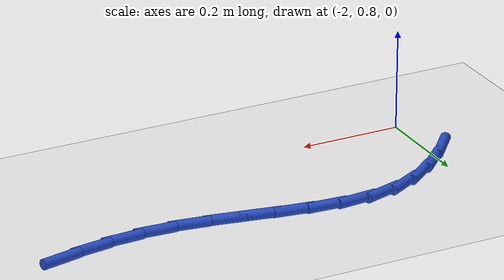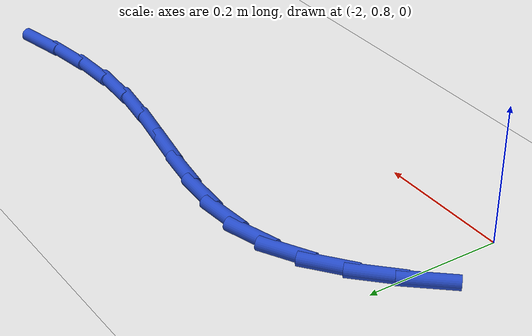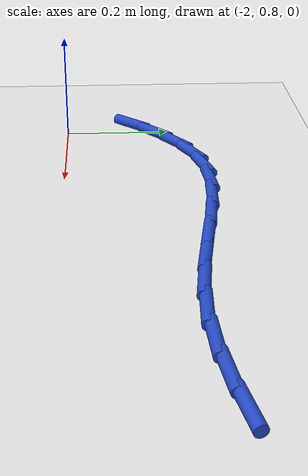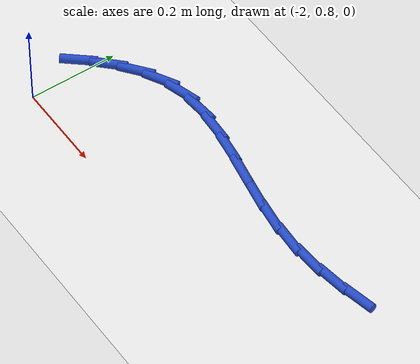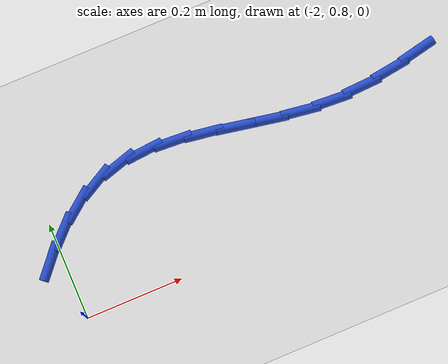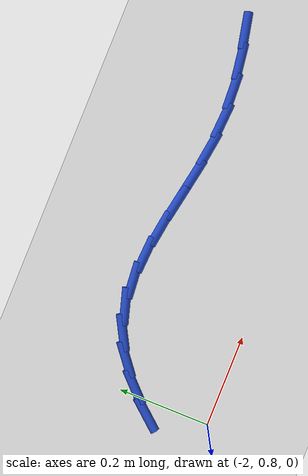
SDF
<sdf version="1.6">
 <world name="default">
  <model name="ground_plane">
   <static>1</static>
   <link name="link">
    <collision name="collision">
     <geometry><plane><normal>0 0 1</normal><size>100 100</size></plane></geometry>
     <surface><friction><ode><mu>100</mu><mu2>50</mu2></ode></friction></surface>
    </collision>
    <visual name="visual">
     <cast_shadows>0</cast_shadows>
     <geometry><plane><normal>0 0 1</normal><size>100 100</size></plane></geometry>
     <material>
      <script><uri>file://media/materials/scripts/gazebo.material</uri><name>Gazebo/WhiteGlow</name></script>
     </material>
    </visual>
   </link>
  </model>
  <model name="line">
   <link name="link_30">
    <pose>-1.1941147302797734 1.037607328694824 0.01 0 1.57 0.20791620965055152</pose>
    <collision name="collision">
     <geometry><cylinder><radius>0.01</radius><length>0.08</length></cylinder></geometry>
    </collision>
    <visual name="visual">
     <material>
      <script><name>Gazebo/Blue</name><uri>file://media/materials/scripts/gazebo.material</uri></script>
     </material>
     <geometry><cylinder><radius>0.01</radius><length>0.08</length></cylinder></geometry>
    </visual>
   </link>
   <link name="link_31">
    <pose>-1.2584746139428011 1.0240296489253082 0.01 0 1.57 0.1388541272055318</pose>
    <collision name="collision">
     <geometry><cylinder><radius>0.01</radius><length>0.08</length></cylinder></geometry>
    </collision>
    <visual name="visual">
     <material>
      <script><name>Gazebo/Blue</name><uri>file://media/materials/scripts/gazebo.material</uri></script>
     </material>
     <geometry><cylinder><radius>0.01</radius><length>0.08</length></cylinder></geometry>
    </visual>
   </link>
   <link name="link_32">
    <pose>-1.3234480516079474 1.0149493865605137 0.01 0 1.57 0.04717300464229935</pose>
    <collision name="collision">
     <geometry><cylinder><radius>0.01</radius><length>0.08</length></cylinder></geometry>
    </collision>
    <visual name="visual">
     <material>
      <script><name>Gazebo/Blue</name><uri>file://media/materials/scripts/gazebo.material</uri></script>
     </material>
     <geometry><cylinder><radius>0.01</radius><length>0.08</length></cylinder></geometry>
    </visual>
   </link>
   <link name="link_33">
    <pose>-1.388926744562097 1.0118582666517422 0.01 0 1.57 -0.06031483211173553</pose>
    <collision name="collision">
     <geometry><cylinder><radius>0.01</radius><length>0.08</length></cylinder></geometry>
    </collision>
    <visual name="visual">
     <material>
      <script><name>Gazebo/Blue</name><uri>file://media/materials/scripts/gazebo.material</uri></script>
     </material>
     <geometry><cylinder><radius>0.01</radius><length>0.08</length></cylinder></geometry>
    </visual>
   </link>
   <link name="link_34">
    <pose>-1.4547596397279179 1.0158337886633184 0.01 0 1.57 -0.141830305003376</pose>
    <collision name="collision">
     <geometry><cylinder><radius>0.01</radius><length>0.08</length></cylinder></geometry>
    </collision>
    <visual name="visual">
     <material>
      <script><name>Gazebo/Blue</name><uri>file://media/materials/scripts/gazebo.material</uri></script>
     </material>
     <geometry><cylinder><radius>0.01</radius><length>0.08</length></cylinder></geometry>
    </visual>
   </link>
   <link name="link_35">
    <pose>-1.5205138358712897 1.0252227666588032 0.01 0 1.57 -0.1828571699990268</pose>
    <collision name="collision">
     <geometry><cylinder><radius>0.01</radius><length>0.08</length></cylinder></geometry>
    </collision>
    <visual name="visual">
     <material>
      <script><name>Gazebo/Blue</name><uri>file://media/materials/scripts/gazebo.material</uri></script>
     </material>
     <geometry><cylinder><radius>0.01</radius><length>0.08</length></cylinder></geometry>
    </visual>
   </link>
   <link name="link_36">
    <pose>-1.5856423272134117 1.0372665130094307 0.01 0 1.57 -0.18451784505049837</pose>
    <collision name="collision">
     <geometry><cylinder><radius>0.01</radius><length>0.08</length></cylinder></geometry>
    </collision>
    <visual name="visual">
     <material>
      <script><name>Gazebo/Blue</name><uri>file://media/materials/scripts/gazebo.material</uri></script>
     </material>
     <geometry><cylinder><radius>0.01</radius><length>0.08</length></cylinder></geometry>
    </visual>
   </link>
   <link name="link_37">
    <pose>-1.6495977852912187 1.0492032137604403 0.01 0 1.57 -0.1446848916508525</pose>
    <collision name="collision">
     <geometry><cylinder><radius>0.01</radius><length>0.08</length></cylinder></geometry>
    </collision>
    <visual name="visual">
     <material>
      <script><name>Gazebo/Blue</name><uri>file://media/materials/scripts/gazebo.material</uri></script>
     </material>
     <geometry><cylinder><radius>0.01</radius><length>0.08</length></cylinder></geometry>
    </visual>
   </link>
   <link name="link_38">
    <pose>-1.7118328816416417 1.0582710549570715 0.01 0 1.57 -0.05725462051528842</pose>
    <collision name="collision">
     <geometry><cylinder><radius>0.01</radius><length>0.08</length></cylinder></geometry>
    </collision>
    <visual name="visual">
     <material>
      <script><name>Gazebo/Blue</name><uri>file://media/materials/scripts/gazebo.material</uri></script>
     </material>
     <geometry><cylinder><radius>0.01</radius><length>0.08</length></cylinder></geometry>
    </visual>
   </link>
   <link name="link_39">
    <pose>-1.7718002878016155 1.0617082226445642 0.01 0 1.57 0.08648734483342908</pose>
    <collision name="collision">
     <geometry><cylinder><radius>0.01</radius><length>0.08</length></cylinder></geometry>
    </collision>
    <visual name="visual">
     <material>
      <script><name>Gazebo/Blue</name><uri>file://media/materials/scripts/gazebo.material</uri></script>
     </material>
     <geometry><cylinder><radius>0.01</radius><length>0.08</length></cylinder></geometry>
    </visual>
   </link>
   <link name="link_40">
    <pose>-1.828952675308072 1.056752902868158 0.01 0 1.57 0.289834148782788</pose>
    <collision name="collision">
     <geometry><cylinder><radius>0.01</radius><length>0.08</length></cylinder></geometry>
    </collision>
    <visual name="visual">
     <material>
      <script><name>Gazebo/Blue</name><uri>file://media/materials/scripts/gazebo.material</uri></script>
     </material>
     <geometry><cylinder><radius>0.01</radius><length>0.08</length></cylinder></geometry>
    </visual>
   </link>
   <link name="link_41">
    <pose>-1.882756156443358 1.0407069736554835 0.01 0 1.57 0.5031441622217817</pose>
    <collision name="collision">
     <geometry><cylinder><radius>0.01</radius><length>0.08</length></cylinder></geometry>
    </collision>
    <visual name="visual">
     <material>
      <script><name>Gazebo/Blue</name><uri>file://media/materials/scripts/gazebo.material</uri></script>
     </material>
     <geometry><cylinder><radius>0.01</radius><length>0.08</length></cylinder></geometry>
    </visual>
   </link>
   <link name="link_42">
    <pose>-1.933122799134219 1.0129855737334788 0.01 0 1.57 0.6686027158647435</pose>
    <collision name="collision">
     <geometry><cylinder><radius>0.01</radius><length>0.08</length></cylinder></geometry>
    </collision>
    <visual name="visual">
     <material>
      <script><name>Gazebo/Blue</name><uri>file://media/materials/scripts/gazebo.material</uri></script>
     </material>
     <geometry><cylinder><radius>0.01</radius><length>0.08</length></cylinder></geometry>
    </visual>
   </link>
   <link name="link_43">
    <pose>-1.980503220160912 0.9755558761873655 0.01 0 1.57 0.7869712430743203</pose>
    <collision name="collision">
     <geometry><cylinder><radius>0.01</radius><length>0.08</length></cylinder></geometry>
    </collision>
    <visual name="visual">
     <material>
      <script><name>Gazebo/Blue</name><uri>file://media/materials/scripts/gazebo.material</uri></script>
     </material>
     <geometry><cylinder><radius>0.01</radius><length>0.08</length></cylinder></geometry>
    </visual>
   </link>
   <link name="link_44">
    <pose>-2.0253802025544703 0.9305374810857793 0.01 0 1.57 0.8669700604327482</pose>
    <collision name="collision">
     <geometry><cylinder><radius>0.01</radius><length>0.08</length></cylinder></geometry>
    </collision>
    <visual name="visual">
     <material>
      <script><name>Gazebo/Blue</name><uri>file://media/materials/scripts/gazebo.material</uri></script>
     </material>
     <geometry><cylinder><radius>0.01</radius><length>0.08</length></cylinder></geometry>
    </visual>
   </link>
  </model>
 </world>
</sdf>
